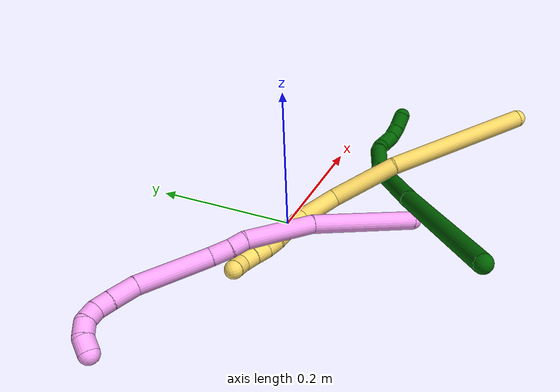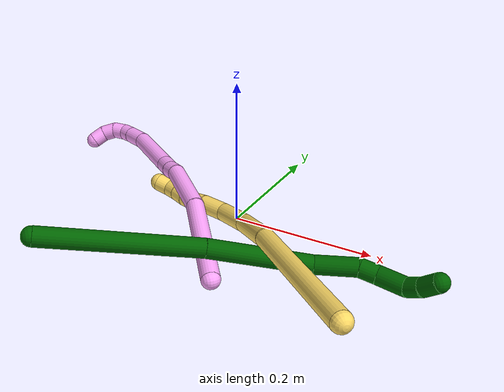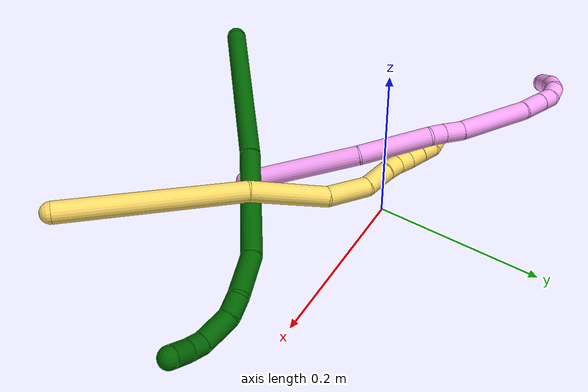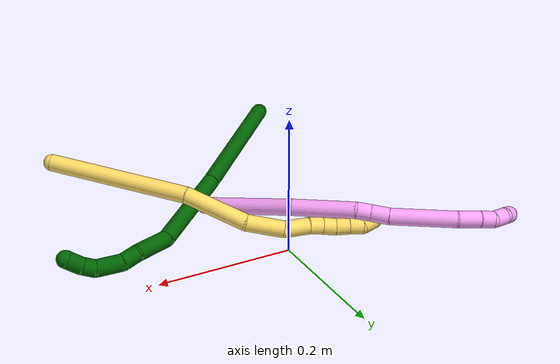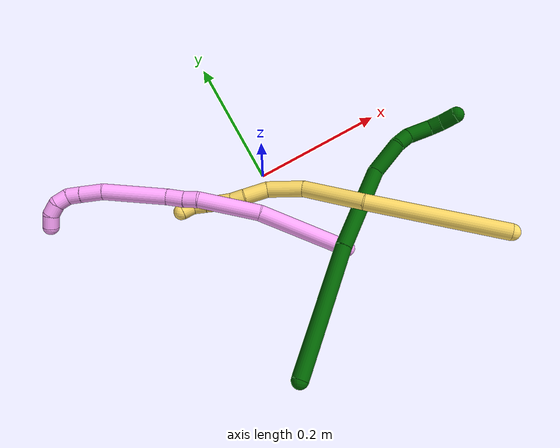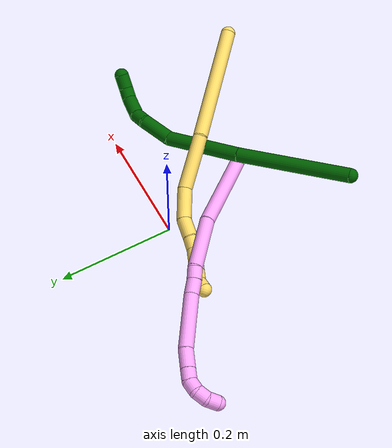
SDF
<sdf version="1.7">
 <world name="default">
  <model name="4">
   <static>0</static>
   <link name="4">
    <collision name="collision-cylinder-e_1_1_4">
     <pose>-0.043474 0.055784 -0.015827 -1.84726 -0.643337 0.830596</pose>
     <geometry><cylinder><radius>0.0125</radius><length>0.144947</length></cylinder></geometry>
     <surface>
      <friction><ode><mu>1.16</mu><mu2>1.16</mu2><slip1>0</slip1><slip2>0</slip2></ode></friction>
      <contact><ode><kp>1e+06</kp><kd>1</kd><max_vel>0</max_vel><min_depth>0.001</min_depth></ode></contact>
     </surface>
    </collision>
    <visual name="visual-cylinder-e_1_1_4">
     <pose>-0.043474 0.055784 -0.015827 -1.84726 -0.643337 0.830596</pose>
     <geometry><cylinder><radius>0.0125</radius><length>0.144947</length></cylinder></geometry>
     <material><ambient>1 0.65098 0.996078 1</ambient></material>
    </visual>
    <collision name="collision-cylinder-e_2_4_5">
     <pose>-0.119886 0.14527 -0.034392 -1.65183 -0.77228 0.830532</pose>
     <geometry><cylinder><radius>0.0125</radius><length>0.094407</length></cylinder></geometry>
     <surface>
      <friction><ode><mu>1.16</mu><mu2>1.16</mu2><slip1>0</slip1><slip2>0</slip2></ode></friction>
      <contact><ode><kp>1e+06</kp><kd>1</kd><max_vel>0</max_vel><min_depth>0.001</min_depth></ode></contact>
     </surface>
    </collision>
    <visual name="visual-cylinder-e_2_4_5">
     <pose>-0.119886 0.14527 -0.034392 -1.65183 -0.77228 0.830532</pose>
     <geometry><cylinder><radius>0.0125</radius><length>0.094407</length></cylinder></geometry>
     <material><ambient>1 0.65098 0.996078 1</ambient></material>
    </visual>
    <collision name="collision-cylinder-e_3_5_6">
     <pose>-0.161853 0.184849 -0.036068 -1.39227 -0.986487 0.844444</pose>
     <geometry><cylinder><radius>0.0125</radius><length>0.021653</length></cylinder></geometry>
     <surface>
      <friction><ode><mu>1.16</mu><mu2>1.16</mu2><slip1>0</slip1><slip2>0</slip2></ode></friction>
      <contact><ode><kp>1e+06</kp><kd>1</kd><max_vel>0</max_vel><min_depth>0.001</min_depth></ode></contact>
     </surface>
    </collision>
    <visual name="visual-cylinder-e_3_5_6">
     <pose>-0.161853 0.184849 -0.036068 -1.39227 -0.986487 0.844444</pose>
     <geometry><cylinder><radius>0.0125</radius><length>0.021653</length></cylinder></geometry>
     <material><ambient>1 0.65098 0.996078 1</ambient></material>
    </visual>
    <collision name="collision-cylinder-e_4_6_7">
     <pose>-0.181928 0.198575 -0.035266 -1.60374 -0.952697 0.979807</pose>
     <geometry><cylinder><radius>0.0125</radius><length>0.027103</length></cylinder></geometry>
     <surface>
      <friction><ode><mu>1.16</mu><mu2>1.16</mu2><slip1>0</slip1><slip2>0</slip2></ode></friction>
      <contact><ode><kp>1e+06</kp><kd>1</kd><max_vel>0</max_vel><min_depth>0.001</min_depth></ode></contact>
     </surface>
    </collision>
    <visual name="visual-cylinder-e_4_6_7">
     <pose>-0.181928 0.198575 -0.035266 -1.60374 -0.952697 0.979807</pose>
     <geometry><cylinder><radius>0.0125</radius><length>0.027103</length></cylinder></geometry>
     <material><ambient>1 0.65098 0.996078 1</ambient></material>
    </visual>
    <collision name="collision-cylinder-e_5_7_8">
     <pose>-0.22896 0.23917 -0.032321 -1.47326 -0.830148 0.760433</pose>
     <geometry><cylinder><radius>0.0125</radius><length>0.097526</length></cylinder></geometry>
     <surface>
      <friction><ode><mu>1.16</mu><mu2>1.16</mu2><slip1>0</slip1><slip2>0</slip2></ode></friction>
      <contact><ode><kp>1e+06</kp><kd>1</kd><max_vel>0</max_vel><min_depth>0.001</min_depth></ode></contact>
     </surface>
    </collision>
    <visual name="visual-cylinder-e_5_7_8">
     <pose>-0.22896 0.23917 -0.032321 -1.47326 -0.830148 0.760433</pose>
     <geometry><cylinder><radius>0.0125</radius><length>0.097526</length></cylinder></geometry>
     <material><ambient>1 0.65098 0.996078 1</ambient></material>
    </visual>
    <collision name="collision-cylinder-e_6_8_9">
     <pose>-0.277568 0.282285 -0.024687 -1.167 -0.84161 0.57457</pose>
     <geometry><cylinder><radius>0.0125</radius><length>0.033844</length></cylinder></geometry>
     <surface>
      <friction><ode><mu>1.16</mu><mu2>1.16</mu2><slip1>0</slip1><slip2>0</slip2></ode></friction>
      <contact><ode><kp>1e+06</kp><kd>1</kd><max_vel>0</max_vel><min_depth>0.001</min_depth></ode></contact>
     </surface>
    </collision>
    <visual name="visual-cylinder-e_6_8_9">
     <pose>-0.277568 0.282285 -0.024687 -1.167 -0.84161 0.57457</pose>
     <geometry><cylinder><radius>0.0125</radius><length>0.033844</length></cylinder></geometry>
     <material><ambient>1 0.65098 0.996078 1</ambient></material>
    </visual>
    <collision name="collision-cylinder-e_7_9_10">
     <pose>-0.297928 0.298648 -0.017486 -1.13787 -0.864425 0.573702</pose>
     <geometry><cylinder><radius>0.0125</radius><length>0.020352</length></cylinder></geometry>
     <surface>
      <friction><ode><mu>1.16</mu><mu2>1.16</mu2><slip1>0</slip1><slip2>0</slip2></ode></friction>
      <contact><ode><kp>1e+06</kp><kd>1</kd><max_vel>0</max_vel><min_depth>0.001</min_depth></ode></contact>
     </surface>
    </collision>
    <visual name="visual-cylinder-e_7_9_10">
     <pose>-0.297928 0.298648 -0.017486 -1.13787 -0.864425 0.573702</pose>
     <geometry><cylinder><radius>0.0125</radius><length>0.020352</length></cylinder></geometry>
     <material><ambient>1 0.65098 0.996078 1</ambient></material>
    </visual>
    <collision name="collision-cylinder-e_8_10_11">
     <pose>-0.31118 0.309744 -0.008024 -0.651213 -0.579948 0.200806</pose>
     <geometry><cylinder><radius>0.0125</radius><length>0.020115</length></cylinder></geometry>
     <surface>
      <friction><ode><mu>1.16</mu><mu2>1.16</mu2><slip1>0</slip1><slip2>0</slip2></ode></friction>
      <contact><ode><kp>1e+06</kp><kd>1</kd><max_vel>0</max_vel><min_depth>0.001</min_depth></ode></contact>
     </surface>
    </collision>
    <visual name="visual-cylinder-e_8_10_11">
     <pose>-0.31118 0.309744 -0.008024 -0.651213 -0.579948 0.200806</pose>
     <geometry><cylinder><radius>0.0125</radius><length>0.020115</length></cylinder></geometry>
     <material><ambient>1 0.65098 0.996078 1</ambient></material>
    </visual>
    <collision name="collision-cylinder-e_9_11_12">
     <pose>-0.32155 0.315364 0.007421 -0.059402 -0.505959 0.015361</pose>
     <geometry><cylinder><radius>0.0125</radius><length>0.020049</length></cylinder></geometry>
     <surface>
      <friction><ode><mu>1.16</mu><mu2>1.16</mu2><slip1>0</slip1><slip2>0</slip2></ode></friction>
      <contact><ode><kp>1e+06</kp><kd>1</kd><max_vel>0</max_vel><min_depth>0.001</min_depth></ode></contact>
     </surface>
    </collision>
    <visual name="visual-cylinder-e_9_11_12">
     <pose>-0.32155 0.315364 0.007421 -0.059402 -0.505959 0.015361</pose>
     <geometry><cylinder><radius>0.0125</radius><length>0.020049</length></cylinder></geometry>
     <material><ambient>1 0.65098 0.996078 1</ambient></material>
    </visual>
    <collision name="collision-cylinder-e_10_12_2">
     <pose>-0.329497 0.312341 0.025003 0.381588 -0.313934 -0.061118</pose>
     <geometry><cylinder><radius>0.0125</radius><length>0.020006</length></cylinder></geometry>
     <surface>
      <friction><ode><mu>1.16</mu><mu2>1.16</mu2><slip1>0</slip1><slip2>0</slip2></ode></friction>
      <contact><ode><kp>1e+06</kp><kd>1</kd><max_vel>0</max_vel><min_depth>0.001</min_depth></ode></contact>
     </surface>
    </collision>
    <visual name="visual-cylinder-e_10_12_2">
     <pose>-0.329497 0.312341 0.025003 0.381588 -0.313934 -0.061118</pose>
     <geometry><cylinder><radius>0.0125</radius><length>0.020006</length></cylinder></geometry>
     <material><ambient>1 0.65098 0.996078 1</ambient></material>
    </visual>
    <collision name="collision-sphere-2">
     <pose>-0.332586 0.308799 0.033833 0 -0 0</pose>
     <geometry><sphere><radius>0.0125</radius></sphere></geometry>
     <surface>
      <friction><ode><mu>1.16</mu><mu2>1.16</mu2><slip1>0</slip1><slip2>0</slip2></ode></friction>
      <contact><ode><kp>1e+06</kp><kd>1</kd><max_vel>0</max_vel><min_depth>0.001</min_depth></ode></contact>
     </surface>
    </collision>
    <visual name="visual-sphere-2">
     <pose>-0.332586 0.308799 0.033833 0 -0 0</pose>
     <geometry><sphere><radius>0.0125</radius></sphere></geometry>
     <material><ambient>1 0.65098 0.996078 1</ambient></material>
    </visual>
    <collision name="collision-sphere-12">
     <pose>-0.326408 0.315884 0.016174 0 -0 0</pose>
     <geometry><sphere><radius>0.0125</radius></sphere></geometry>
     <surface>
      <friction><ode><mu>1.16</mu><mu2>1.16</mu2><slip1>0</slip1><slip2>0</slip2></ode></friction>
      <contact><ode><kp>1e+06</kp><kd>1</kd><max_vel>0</max_vel><min_depth>0.001</min_depth></ode></contact>
     </surface>
    </collision>
    <visual name="visual-sphere-12">
     <pose>-0.326408 0.315884 0.016174 0 -0 0</pose>
     <geometry><sphere><radius>0.0125</radius></sphere></geometry>
     <material><ambient>1 0.65098 0.996078 1</ambient></material>
    </visual>
    <collision name="collision-sphere-11">
     <pose>-0.316692 0.314843 -0.001332 0 -0 0</pose>
     <geometry><sphere><radius>0.0125</radius></sphere></geometry>
     <surface>
      <friction><ode><mu>1.16</mu><mu2>1.16</mu2><slip1>0</slip1><slip2>0</slip2></ode></friction>
      <contact><ode><kp>1e+06</kp><kd>1</kd><max_vel>0</max_vel><min_depth>0.001</min_depth></ode></contact>
     </surface>
    </collision>
    <visual name="visual-sphere-11">
     <pose>-0.316692 0.314843 -0.001332 0 -0 0</pose>
     <geometry><sphere><radius>0.0125</radius></sphere></geometry>
     <material><ambient>1 0.65098 0.996078 1</ambient></material>
    </visual>
    <collision name="collision-sphere-10">
     <pose>-0.305669 0.304644 -0.014715 0 -0 0</pose>
     <geometry><sphere><radius>0.0125</radius></sphere></geometry>
     <surface>
      <friction><ode><mu>1.16</mu><mu2>1.16</mu2><slip1>0</slip1><slip2>0</slip2></ode></friction>
      <contact><ode><kp>1e+06</kp><kd>1</kd><max_vel>0</max_vel><min_depth>0.001</min_depth></ode></contact>
     </surface>
    </collision>
    <visual name="visual-sphere-10">
     <pose>-0.305669 0.304644 -0.014715 0 -0 0</pose>
     <geometry><sphere><radius>0.0125</radius></sphere></geometry>
     <material><ambient>1 0.65098 0.996078 1</ambient></material>
    </visual>
    <collision name="collision-sphere-9">
     <pose>-0.290187 0.292653 -0.020257 0 -0 0</pose>
     <geometry><sphere><radius>0.0125</radius></sphere></geometry>
     <surface>
      <friction><ode><mu>1.16</mu><mu2>1.16</mu2><slip1>0</slip1><slip2>0</slip2></ode></friction>
      <contact><ode><kp>1e+06</kp><kd>1</kd><max_vel>0</max_vel><min_depth>0.001</min_depth></ode></contact>
     </surface>
    </collision>
    <visual name="visual-sphere-9">
     <pose>-0.290187 0.292653 -0.020257 0 -0 0</pose>
     <geometry><sphere><radius>0.0125</radius></sphere></geometry>
     <material><ambient>1 0.65098 0.996078 1</ambient></material>
    </visual>
    <collision name="collision-sphere-4">
     <pose>-0.086949 0.111568 -0.031655 0 -0 0</pose>
     <geometry><sphere><radius>0.0125</radius></sphere></geometry>
     <surface>
      <friction><ode><mu>1.16</mu><mu2>1.16</mu2><slip1>0</slip1><slip2>0</slip2></ode></friction>
      <contact><ode><kp>1e+06</kp><kd>1</kd><max_vel>0</max_vel><min_depth>0.001</min_depth></ode></contact>
     </surface>
    </collision>
    <visual name="visual-sphere-4">
     <pose>-0.086949 0.111568 -0.031655 0 -0 0</pose>
     <geometry><sphere><radius>0.0125</radius></sphere></geometry>
     <material><ambient>1 0.65098 0.996078 1</ambient></material>
    </visual>
    <collision name="collision-sphere-1">
     <geometry><sphere><radius>0.0125</radius></sphere></geometry>
     <surface>
      <friction><ode><mu>1.16</mu><mu2>1.16</mu2><slip1>0</slip1><slip2>0</slip2></ode></friction>
      <contact><ode><kp>1e+06</kp><kd>1</kd><max_vel>0</max_vel><min_depth>0.001</min_depth></ode></contact>
     </surface>
    </collision>
    <visual name="visual-sphere-1">
     <geometry><sphere><radius>0.0125</radius></sphere></geometry>
     <material><ambient>1 0.65098 0.996078 1</ambient></material>
    </visual>
    <collision name="collision-sphere-8">
     <pose>-0.264949 0.271917 -0.029117 0 -0 0</pose>
     <geometry><sphere><radius>0.0125</radius></sphere></geometry>
     <surface>
      <friction><ode><mu>1.16</mu><mu2>1.16</mu2><slip1>0</slip1><slip2>0</slip2></ode></friction>
      <contact><ode><kp>1e+06</kp><kd>1</kd><max_vel>0</max_vel><min_depth>0.001</min_depth></ode></contact>
     </surface>
    </collision>
    <visual name="visual-sphere-8">
     <pose>-0.264949 0.271917 -0.029117 0 -0 0</pose>
     <geometry><sphere><radius>0.0125</radius></sphere></geometry>
     <material><ambient>1 0.65098 0.996078 1</ambient></material>
    </visual>
    <collision name="collision-sphere-5">
     <pose>-0.152823 0.178972 -0.037129 0 -0 0</pose>
     <geometry><sphere><radius>0.0125</radius></sphere></geometry>
     <surface>
      <friction><ode><mu>1.16</mu><mu2>1.16</mu2><slip1>0</slip1><slip2>0</slip2></ode></friction>
      <contact><ode><kp>1e+06</kp><kd>1</kd><max_vel>0</max_vel><min_depth>0.001</min_depth></ode></contact>
     </surface>
    </collision>
    <visual name="visual-sphere-5">
     <pose>-0.152823 0.178972 -0.037129 0 -0 0</pose>
     <geometry><sphere><radius>0.0125</radius></sphere></geometry>
     <material><ambient>1 0.65098 0.996078 1</ambient></material>
    </visual>
    <collision name="collision-sphere-6">
     <pose>-0.170884 0.190726 -0.035008 0 -0 0</pose>
     <geometry><sphere><radius>0.0125</radius></sphere></geometry>
     <surface>
      <friction><ode><mu>1.16</mu><mu2>1.16</mu2><slip1>0</slip1><slip2>0</slip2></ode></friction>
      <contact><ode><kp>1e+06</kp><kd>1</kd><max_vel>0</max_vel><min_depth>0.001</min_depth></ode></contact>
     </surface>
    </collision>
    <visual name="visual-sphere-6">
     <pose>-0.170884 0.190726 -0.035008 0 -0 0</pose>
     <geometry><sphere><radius>0.0125</radius></sphere></geometry>
     <material><ambient>1 0.65098 0.996078 1</ambient></material>
    </visual>
    <collision name="collision-sphere-7">
     <pose>-0.192972 0.206423 -0.035525 0 -0 0</pose>
     <geometry><sphere><radius>0.0125</radius></sphere></geometry>
     <surface>
      <friction><ode><mu>1.16</mu><mu2>1.16</mu2><slip1>0</slip1><slip2>0</slip2></ode></friction>
      <contact><ode><kp>1e+06</kp><kd>1</kd><max_vel>0</max_vel><min_depth>0.001</min_depth></ode></contact>
     </surface>
    </collision>
    <visual name="visual-sphere-7">
     <pose>-0.192972 0.206423 -0.035525 0 -0 0</pose>
     <geometry><sphere><radius>0.0125</radius></sphere></geometry>
     <material><ambient>1 0.65098 0.996078 1</ambient></material>
    </visual>
    <inertial>
     <pose>-0.166279 0.177887 -0.022267 0 -0 0</pose>
     <mass>0.5</mass>
     <inertia>
      <ixx>0.000432</ixx>
      <ixy>0</ixy>
      <ixz>0</ixz>
      <iyy>0.000413</iyy>
      <iyz>0</iyz>
      <izz>-3.4e-05</izz>
     </inertia>
    </inertial>
   </link>
   <pose>0.056853 -0.163211 0.01247 1.5816 -0.739604 -0.659775</pose>
  </model>
  <model name="5">
   <static>0</static>
   <link name="5">
    <collision name="collision-cylinder-e_1_1_4">
     <pose>0.005436 -0.005221 -0.104489 3.09167 0.051916 1.6099</pose>
     <geometry><cylinder><radius>0.0125</radius><length>0.209522</length></cylinder></geometry>
     <surface>
      <friction><ode><mu>1.16</mu><mu2>1.16</mu2><slip1>0</slip1><slip2>0</slip2></ode></friction>
      <contact><ode><kp>1e+06</kp><kd>1</kd><max_vel>0</max_vel><min_depth>0.001</min_depth></ode></contact>
     </surface>
    </collision>
    <visual name="visual-cylinder-e_1_1_4">
     <pose>0.005436 -0.005221 -0.104489 3.09167 0.051916 1.6099</pose>
     <geometry><cylinder><radius>0.0125</radius><length>0.209522</length></cylinder></geometry>
     <material><ambient>1 0.858824 0.4 1</ambient></material>
    </visual>
    <collision name="collision-cylinder-e_2_4_5">
     <pose>0.020184 -0.019241 -0.255222 2.95356 0.195295 1.60889</pose>
     <geometry><cylinder><radius>0.0125</radius><length>0.095971</length></cylinder></geometry>
     <surface>
      <friction><ode><mu>1.16</mu><mu2>1.16</mu2><slip1>0</slip1><slip2>0</slip2></ode></friction>
      <contact><ode><kp>1e+06</kp><kd>1</kd><max_vel>0</max_vel><min_depth>0.001</min_depth></ode></contact>
     </surface>
    </collision>
    <visual name="visual-cylinder-e_2_4_5">
     <pose>0.020184 -0.019241 -0.255222 2.95356 0.195295 1.60889</pose>
     <geometry><cylinder><radius>0.0125</radius><length>0.095971</length></cylinder></geometry>
     <material><ambient>1 0.858824 0.4 1</ambient></material>
    </visual>
    <collision name="collision-cylinder-e_3_5_6">
     <pose>0.026572 -0.033655 -0.328645 2.93791 -0.104964 -0.949583</pose>
     <geometry><cylinder><radius>0.0125</radius><length>0.055813</length></cylinder></geometry>
     <surface>
      <friction><ode><mu>1.16</mu><mu2>1.16</mu2><slip1>0</slip1><slip2>0</slip2></ode></friction>
      <contact><ode><kp>1e+06</kp><kd>1</kd><max_vel>0</max_vel><min_depth>0.001</min_depth></ode></contact>
     </surface>
    </collision>
    <visual name="visual-cylinder-e_3_5_6">
     <pose>0.026572 -0.033655 -0.328645 2.93791 -0.104964 -0.949583</pose>
     <geometry><cylinder><radius>0.0125</radius><length>0.055813</length></cylinder></geometry>
     <material><ambient>1 0.858824 0.4 1</ambient></material>
    </visual>
    <collision name="collision-cylinder-e_4_6_7">
     <pose>0.015272 -0.043309 -0.371732 2.89287 -0.471918 -2.18268</pose>
     <geometry><cylinder><radius>0.0125</radius><length>0.036855</length></cylinder></geometry>
     <surface>
      <friction><ode><mu>1.16</mu><mu2>1.16</mu2><slip1>0</slip1><slip2>0</slip2></ode></friction>
      <contact><ode><kp>1e+06</kp><kd>1</kd><max_vel>0</max_vel><min_depth>0.001</min_depth></ode></contact>
     </surface>
    </collision>
    <visual name="visual-cylinder-e_4_6_7">
     <pose>0.015272 -0.043309 -0.371732 2.89287 -0.471918 -2.18268</pose>
     <geometry><cylinder><radius>0.0125</radius><length>0.036855</length></cylinder></geometry>
     <material><ambient>1 0.858824 0.4 1</ambient></material>
    </visual>
    <collision name="collision-cylinder-e_5_7_8">
     <pose>0.003066 -0.050927 -0.396866 2.77168 -0.369186 -1.5688</pose>
     <geometry><cylinder><radius>0.0125</radius><length>0.02122</length></cylinder></geometry>
     <surface>
      <friction><ode><mu>1.16</mu><mu2>1.16</mu2><slip1>0</slip1><slip2>0</slip2></ode></friction>
      <contact><ode><kp>1e+06</kp><kd>1</kd><max_vel>0</max_vel><min_depth>0.001</min_depth></ode></contact>
     </surface>
    </collision>
    <visual name="visual-cylinder-e_5_7_8">
     <pose>0.003066 -0.050927 -0.396866 2.77168 -0.369186 -1.5688</pose>
     <geometry><cylinder><radius>0.0125</radius><length>0.02122</length></cylinder></geometry>
     <material><ambient>1 0.858824 0.4 1</ambient></material>
    </visual>
    <collision name="collision-cylinder-e_6_8_9">
     <pose>-0.003206 -0.057016 -0.415465 2.87977 -0.246662 -1.51056</pose>
     <geometry><cylinder><radius>0.0125</radius><length>0.020012</length></cylinder></geometry>
     <surface>
      <friction><ode><mu>1.16</mu><mu2>1.16</mu2><slip1>0</slip1><slip2>0</slip2></ode></friction>
      <contact><ode><kp>1e+06</kp><kd>1</kd><max_vel>0</max_vel><min_depth>0.001</min_depth></ode></contact>
     </surface>
    </collision>
    <visual name="visual-cylinder-e_6_8_9">
     <pose>-0.003206 -0.057016 -0.415465 2.87977 -0.246662 -1.51056</pose>
     <geometry><cylinder><radius>0.0125</radius><length>0.020012</length></cylinder></geometry>
     <material><ambient>1 0.858824 0.4 1</ambient></material>
    </visual>
    <collision name="collision-cylinder-e_7_9_10">
     <pose>-0.008954 -0.060522 -0.434458 3.03858 -0.32928 -2.53987</pose>
     <geometry><cylinder><radius>0.0125</radius><length>0.020441</length></cylinder></geometry>
     <surface>
      <friction><ode><mu>1.16</mu><mu2>1.16</mu2><slip1>0</slip1><slip2>0</slip2></ode></friction>
      <contact><ode><kp>1e+06</kp><kd>1</kd><max_vel>0</max_vel><min_depth>0.001</min_depth></ode></contact>
     </surface>
    </collision>
    <visual name="visual-cylinder-e_7_9_10">
     <pose>-0.008954 -0.060522 -0.434458 3.03858 -0.32928 -2.53987</pose>
     <geometry><cylinder><radius>0.0125</radius><length>0.020441</length></cylinder></geometry>
     <material><ambient>1 0.858824 0.4 1</ambient></material>
    </visual>
    <collision name="collision-cylinder-e_8_10_11">
     <pose>-0.015192 -0.063089 -0.453596 2.97787 -0.295145 -2.13294</pose>
     <geometry><cylinder><radius>0.0125</radius><length>0.020165</length></cylinder></geometry>
     <surface>
      <friction><ode><mu>1.16</mu><mu2>1.16</mu2><slip1>0</slip1><slip2>0</slip2></ode></friction>
      <contact><ode><kp>1e+06</kp><kd>1</kd><max_vel>0</max_vel><min_depth>0.001</min_depth></ode></contact>
     </surface>
    </collision>
    <visual name="visual-cylinder-e_8_10_11">
     <pose>-0.015192 -0.063089 -0.453596 2.97787 -0.295145 -2.13294</pose>
     <geometry><cylinder><radius>0.0125</radius><length>0.020165</length></cylinder></geometry>
     <material><ambient>1 0.858824 0.4 1</ambient></material>
    </visual>
    <collision name="collision-cylinder-e_9_11_2">
     <pose>-0.025153 -0.065701 -0.470151 2.9949 -0.779371 -2.78751</pose>
     <geometry><cylinder><radius>0.0125</radius><length>0.02</length></cylinder></geometry>
     <surface>
      <friction><ode><mu>1.16</mu><mu2>1.16</mu2><slip1>0</slip1><slip2>0</slip2></ode></friction>
      <contact><ode><kp>1e+06</kp><kd>1</kd><max_vel>0</max_vel><min_depth>0.001</min_depth></ode></contact>
     </surface>
    </collision>
    <visual name="visual-cylinder-e_9_11_2">
     <pose>-0.025153 -0.065701 -0.470151 2.9949 -0.779371 -2.78751</pose>
     <geometry><cylinder><radius>0.0125</radius><length>0.02</length></cylinder></geometry>
     <material><ambient>1 0.858824 0.4 1</ambient></material>
    </visual>
    <collision name="collision-sphere-2">
     <pose>-0.032182 -0.066741 -0.477188 0 -0 0</pose>
     <geometry><sphere><radius>0.0125</radius></sphere></geometry>
     <surface>
      <friction><ode><mu>1.16</mu><mu2>1.16</mu2><slip1>0</slip1><slip2>0</slip2></ode></friction>
      <contact><ode><kp>1e+06</kp><kd>1</kd><max_vel>0</max_vel><min_depth>0.001</min_depth></ode></contact>
     </surface>
    </collision>
    <visual name="visual-sphere-2">
     <pose>-0.032182 -0.066741 -0.477188 0 -0 0</pose>
     <geometry><sphere><radius>0.0125</radius></sphere></geometry>
     <material><ambient>1 0.858824 0.4 1</ambient></material>
    </visual>
    <collision name="collision-sphere-11">
     <pose>-0.018125 -0.064661 -0.463113 0 -0 0</pose>
     <geometry><sphere><radius>0.0125</radius></sphere></geometry>
     <surface>
      <friction><ode><mu>1.16</mu><mu2>1.16</mu2><slip1>0</slip1><slip2>0</slip2></ode></friction>
      <contact><ode><kp>1e+06</kp><kd>1</kd><max_vel>0</max_vel><min_depth>0.001</min_depth></ode></contact>
     </surface>
    </collision>
    <visual name="visual-sphere-11">
     <pose>-0.018125 -0.064661 -0.463113 0 -0 0</pose>
     <geometry><sphere><radius>0.0125</radius></sphere></geometry>
     <material><ambient>1 0.858824 0.4 1</ambient></material>
    </visual>
    <collision name="collision-sphere-10">
     <pose>-0.012259 -0.061517 -0.444078 0 -0 0</pose>
     <geometry><sphere><radius>0.0125</radius></sphere></geometry>
     <surface>
      <friction><ode><mu>1.16</mu><mu2>1.16</mu2><slip1>0</slip1><slip2>0</slip2></ode></friction>
      <contact><ode><kp>1e+06</kp><kd>1</kd><max_vel>0</max_vel><min_depth>0.001</min_depth></ode></contact>
     </surface>
    </collision>
    <visual name="visual-sphere-10">
     <pose>-0.012259 -0.061517 -0.444078 0 -0 0</pose>
     <geometry><sphere><radius>0.0125</radius></sphere></geometry>
     <material><ambient>1 0.858824 0.4 1</ambient></material>
    </visual>
    <collision name="collision-sphere-9">
     <pose>-0.005649 -0.059528 -0.424838 0 -0 0</pose>
     <geometry><sphere><radius>0.0125</radius></sphere></geometry>
     <surface>
      <friction><ode><mu>1.16</mu><mu2>1.16</mu2><slip1>0</slip1><slip2>0</slip2></ode></friction>
      <contact><ode><kp>1e+06</kp><kd>1</kd><max_vel>0</max_vel><min_depth>0.001</min_depth></ode></contact>
     </surface>
    </collision>
    <visual name="visual-sphere-9">
     <pose>-0.005649 -0.059528 -0.424838 0 -0 0</pose>
     <geometry><sphere><radius>0.0125</radius></sphere></geometry>
     <material><ambient>1 0.858824 0.4 1</ambient></material>
    </visual>
    <collision name="collision-sphere-4">
     <pose>0.010873 -0.010442 -0.208979 0 -0 0</pose>
     <geometry><sphere><radius>0.0125</radius></sphere></geometry>
     <surface>
      <friction><ode><mu>1.16</mu><mu2>1.16</mu2><slip1>0</slip1><slip2>0</slip2></ode></friction>
      <contact><ode><kp>1e+06</kp><kd>1</kd><max_vel>0</max_vel><min_depth>0.001</min_depth></ode></contact>
     </surface>
    </collision>
    <visual name="visual-sphere-4">
     <pose>0.010873 -0.010442 -0.208979 0 -0 0</pose>
     <geometry><sphere><radius>0.0125</radius></sphere></geometry>
     <material><ambient>1 0.858824 0.4 1</ambient></material>
    </visual>
    <collision name="collision-sphere-1">
     <geometry><sphere><radius>0.0125</radius></sphere></geometry>
     <surface>
      <friction><ode><mu>1.16</mu><mu2>1.16</mu2><slip1>0</slip1><slip2>0</slip2></ode></friction>
      <contact><ode><kp>1e+06</kp><kd>1</kd><max_vel>0</max_vel><min_depth>0.001</min_depth></ode></contact>
     </surface>
    </collision>
    <visual name="visual-sphere-1">
     <geometry><sphere><radius>0.0125</radius></sphere></geometry>
     <material><ambient>1 0.858824 0.4 1</ambient></material>
    </visual>
    <collision name="collision-sphere-8">
     <pose>-0.000763 -0.054505 -0.406092 0 -0 0</pose>
     <geometry><sphere><radius>0.0125</radius></sphere></geometry>
     <surface>
      <friction><ode><mu>1.16</mu><mu2>1.16</mu2><slip1>0</slip1><slip2>0</slip2></ode></friction>
      <contact><ode><kp>1e+06</kp><kd>1</kd><max_vel>0</max_vel><min_depth>0.001</min_depth></ode></contact>
     </surface>
    </collision>
    <visual name="visual-sphere-8">
     <pose>-0.000763 -0.054505 -0.406092 0 -0 0</pose>
     <geometry><sphere><radius>0.0125</radius></sphere></geometry>
     <material><ambient>1 0.858824 0.4 1</ambient></material>
    </visual>
    <collision name="collision-sphere-5">
     <pose>0.029496 -0.028041 -0.301465 0 -0 0</pose>
     <geometry><sphere><radius>0.0125</radius></sphere></geometry>
     <surface>
      <friction><ode><mu>1.16</mu><mu2>1.16</mu2><slip1>0</slip1><slip2>0</slip2></ode></friction>
      <contact><ode><kp>1e+06</kp><kd>1</kd><max_vel>0</max_vel><min_depth>0.001</min_depth></ode></contact>
     </surface>
    </collision>
    <visual name="visual-sphere-5">
     <pose>0.029496 -0.028041 -0.301465 0 -0 0</pose>
     <geometry><sphere><radius>0.0125</radius></sphere></geometry>
     <material><ambient>1 0.858824 0.4 1</ambient></material>
    </visual>
    <collision name="collision-sphere-6">
     <pose>0.023649 -0.039269 -0.355824 0 -0 0</pose>
     <geometry><sphere><radius>0.0125</radius></sphere></geometry>
     <surface>
      <friction><ode><mu>1.16</mu><mu2>1.16</mu2><slip1>0</slip1><slip2>0</slip2></ode></friction>
      <contact><ode><kp>1e+06</kp><kd>1</kd><max_vel>0</max_vel><min_depth>0.001</min_depth></ode></contact>
     </surface>
    </collision>
    <visual name="visual-sphere-6">
     <pose>0.023649 -0.039269 -0.355824 0 -0 0</pose>
     <geometry><sphere><radius>0.0125</radius></sphere></geometry>
     <material><ambient>1 0.858824 0.4 1</ambient></material>
    </visual>
    <collision name="collision-sphere-7">
     <pose>0.006895 -0.04735 -0.387641 0 -0 0</pose>
     <geometry><sphere><radius>0.0125</radius></sphere></geometry>
     <surface>
      <friction><ode><mu>1.16</mu><mu2>1.16</mu2><slip1>0</slip1><slip2>0</slip2></ode></friction>
      <contact><ode><kp>1e+06</kp><kd>1</kd><max_vel>0</max_vel><min_depth>0.001</min_depth></ode></contact>
     </surface>
    </collision>
    <visual name="visual-sphere-7">
     <pose>0.006895 -0.04735 -0.387641 0 -0 0</pose>
     <geometry><sphere><radius>0.0125</radius></sphere></geometry>
     <material><ambient>1 0.858824 0.4 1</ambient></material>
    </visual>
    <inertial>
     <pose>0.008261 -0.02492 -0.245193 0 -0 0</pose>
     <mass>0.5</mass>
     <inertia>
      <ixx>0.000794</ixx>
      <ixy>0</ixy>
      <ixz>0</ixz>
      <iyy>0.000857</iyy>
      <iyz>0</iyz>
      <izz>-2.7e-05</izz>
     </inertia>
    </inertial>
   </link>
   <pose>0.259403 -0.256682 0.090506 1.49086 0.556336 0.809192</pose>
  </model>
  <model name="6">
   <static>0</static>
   <link name="6">
    <collision name="collision-cylinder-e_1_1_4">
     <pose>0.024479 0.009254 -0.096717 -3.04621 0.246813 -2.40691</pose>
     <geometry><cylinder><radius>0.0125</radius><length>0.20039</length></cylinder></geometry>
     <surface>
      <friction><ode><mu>1.16</mu><mu2>1.16</mu2><slip1>0</slip1><slip2>0</slip2></ode></friction>
      <contact><ode><kp>1e+06</kp><kd>1</kd><max_vel>0</max_vel><min_depth>0.001</min_depth></ode></contact>
     </surface>
    </collision>
    <visual name="visual-cylinder-e_1_1_4">
     <pose>0.024479 0.009254 -0.096717 -3.04621 0.246813 -2.40691</pose>
     <geometry><cylinder><radius>0.0125</radius><length>0.20039</length></cylinder></geometry>
     <material><ambient>0 0.392157 0.003922 1</ambient></material>
    </visual>
    <collision name="collision-cylinder-e_2_4_5">
     <pose>0.071256 0.027078 -0.257003 -3.00758 0.33455 -2.38501</pose>
     <geometry><cylinder><radius>0.0125</radius><length>0.135818</length></cylinder></geometry>
     <surface>
      <friction><ode><mu>1.16</mu><mu2>1.16</mu2><slip1>0</slip1><slip2>0</slip2></ode></friction>
      <contact><ode><kp>1e+06</kp><kd>1</kd><max_vel>0</max_vel><min_depth>0.001</min_depth></ode></contact>
     </surface>
    </collision>
    <visual name="visual-cylinder-e_2_4_5">
     <pose>0.071256 0.027078 -0.257003 -3.00758 0.33455 -2.38501</pose>
     <geometry><cylinder><radius>0.0125</radius><length>0.135818</length></cylinder></geometry>
     <material><ambient>0 0.392157 0.003922 1</ambient></material>
    </visual>
    <collision name="collision-cylinder-e_3_5_6">
     <pose>0.101179 0.048612 -0.344178 -2.6394 0.275945 -0.992317</pose>
     <geometry><cylinder><radius>0.0125</radius><length>0.055981</length></cylinder></geometry>
     <surface>
      <friction><ode><mu>1.16</mu><mu2>1.16</mu2><slip1>0</slip1><slip2>0</slip2></ode></friction>
      <contact><ode><kp>1e+06</kp><kd>1</kd><max_vel>0</max_vel><min_depth>0.001</min_depth></ode></contact>
     </surface>
    </collision>
    <visual name="visual-cylinder-e_3_5_6">
     <pose>0.101179 0.048612 -0.344178 -2.6394 0.275945 -0.992317</pose>
     <geometry><cylinder><radius>0.0125</radius><length>0.055981</length></cylinder></geometry>
     <material><ambient>0 0.392157 0.003922 1</ambient></material>
    </visual>
    <collision name="collision-cylinder-e_4_6_7">
     <pose>0.115646 0.066342 -0.376485 -2.64044 0.603655 -1.76543</pose>
     <geometry><cylinder><radius>0.0125</radius><length>0.024103</length></cylinder></geometry>
     <surface>
      <friction><ode><mu>1.16</mu><mu2>1.16</mu2><slip1>0</slip1><slip2>0</slip2></ode></friction>
      <contact><ode><kp>1e+06</kp><kd>1</kd><max_vel>0</max_vel><min_depth>0.001</min_depth></ode></contact>
     </surface>
    </collision>
    <visual name="visual-cylinder-e_4_6_7">
     <pose>0.115646 0.066342 -0.376485 -2.64044 0.603655 -1.76543</pose>
     <geometry><cylinder><radius>0.0125</radius><length>0.024103</length></cylinder></geometry>
     <material><ambient>0 0.392157 0.003922 1</ambient></material>
    </visual>
    <collision name="collision-cylinder-e_5_7_8">
     <pose>0.133199 0.084187 -0.394402 -2.18461 0.589991 -1.05985</pose>
     <geometry><cylinder><radius>0.0125</radius><length>0.038508</length></cylinder></geometry>
     <surface>
      <friction><ode><mu>1.16</mu><mu2>1.16</mu2><slip1>0</slip1><slip2>0</slip2></ode></friction>
      <contact><ode><kp>1e+06</kp><kd>1</kd><max_vel>0</max_vel><min_depth>0.001</min_depth></ode></contact>
     </surface>
    </collision>
    <visual name="visual-cylinder-e_5_7_8">
     <pose>0.133199 0.084187 -0.394402 -2.18461 0.589991 -1.05985</pose>
     <geometry><cylinder><radius>0.0125</radius><length>0.038508</length></cylinder></geometry>
     <material><ambient>0 0.392157 0.003922 1</ambient></material>
    </visual>
    <collision name="collision-cylinder-e_6_8_9">
     <pose>0.14566 0.106477 -0.407492 -1.96901 0.173179 -0.259914</pose>
     <geometry><cylinder><radius>0.0125</radius><length>0.020289</length></cylinder></geometry>
     <surface>
      <friction><ode><mu>1.16</mu><mu2>1.16</mu2><slip1>0</slip1><slip2>0</slip2></ode></friction>
      <contact><ode><kp>1e+06</kp><kd>1</kd><max_vel>0</max_vel><min_depth>0.001</min_depth></ode></contact>
     </surface>
    </collision>
    <visual name="visual-cylinder-e_6_8_9">
     <pose>0.14566 0.106477 -0.407492 -1.96901 0.173179 -0.259914</pose>
     <geometry><cylinder><radius>0.0125</radius><length>0.020289</length></cylinder></geometry>
     <material><ambient>0 0.392157 0.003922 1</ambient></material>
    </visual>
    <collision name="collision-cylinder-e_7_9_2">
     <pose>0.146789 0.127269 -0.415908 -1.94446 -0.049691 0.072839</pose>
     <geometry><cylinder><radius>0.0125</radius><length>0.024912</length></cylinder></geometry>
     <surface>
      <friction><ode><mu>1.16</mu><mu2>1.16</mu2><slip1>0</slip1><slip2>0</slip2></ode></friction>
      <contact><ode><kp>1e+06</kp><kd>1</kd><max_vel>0</max_vel><min_depth>0.001</min_depth></ode></contact>
     </surface>
    </collision>
    <visual name="visual-cylinder-e_7_9_2">
     <pose>0.146789 0.127269 -0.415908 -1.94446 -0.049691 0.072839</pose>
     <geometry><cylinder><radius>0.0125</radius><length>0.024912</length></cylinder></geometry>
     <material><ambient>0 0.392157 0.003922 1</ambient></material>
    </visual>
    <collision name="collision-sphere-2">
     <pose>0.14617 0.138851 -0.420449 0 -0 0</pose>
     <geometry><sphere><radius>0.0125</radius></sphere></geometry>
     <surface>
      <friction><ode><mu>1.16</mu><mu2>1.16</mu2><slip1>0</slip1><slip2>0</slip2></ode></friction>
      <contact><ode><kp>1e+06</kp><kd>1</kd><max_vel>0</max_vel><min_depth>0.001</min_depth></ode></contact>
     </surface>
    </collision>
    <visual name="visual-sphere-2">
     <pose>0.14617 0.138851 -0.420449 0 -0 0</pose>
     <geometry><sphere><radius>0.0125</radius></sphere></geometry>
     <material><ambient>0 0.392157 0.003922 1</ambient></material>
    </visual>
    <collision name="collision-sphere-9">
     <pose>0.147408 0.115687 -0.411367 0 -0 0</pose>
     <geometry><sphere><radius>0.0125</radius></sphere></geometry>
     <surface>
      <friction><ode><mu>1.16</mu><mu2>1.16</mu2><slip1>0</slip1><slip2>0</slip2></ode></friction>
      <contact><ode><kp>1e+06</kp><kd>1</kd><max_vel>0</max_vel><min_depth>0.001</min_depth></ode></contact>
     </surface>
    </collision>
    <visual name="visual-sphere-9">
     <pose>0.147408 0.115687 -0.411367 0 -0 0</pose>
     <geometry><sphere><radius>0.0125</radius></sphere></geometry>
     <material><ambient>0 0.392157 0.003922 1</ambient></material>
    </visual>
    <collision name="collision-sphere-4">
     <pose>0.048958 0.018507 -0.193434 0 -0 0</pose>
     <geometry><sphere><radius>0.0125</radius></sphere></geometry>
     <surface>
      <friction><ode><mu>1.16</mu><mu2>1.16</mu2><slip1>0</slip1><slip2>0</slip2></ode></friction>
      <contact><ode><kp>1e+06</kp><kd>1</kd><max_vel>0</max_vel><min_depth>0.001</min_depth></ode></contact>
     </surface>
    </collision>
    <visual name="visual-sphere-4">
     <pose>0.048958 0.018507 -0.193434 0 -0 0</pose>
     <geometry><sphere><radius>0.0125</radius></sphere></geometry>
     <material><ambient>0 0.392157 0.003922 1</ambient></material>
    </visual>
    <collision name="collision-sphere-1">
     <geometry><sphere><radius>0.0125</radius></sphere></geometry>
     <surface>
      <friction><ode><mu>1.16</mu><mu2>1.16</mu2><slip1>0</slip1><slip2>0</slip2></ode></friction>
      <contact><ode><kp>1e+06</kp><kd>1</kd><max_vel>0</max_vel><min_depth>0.001</min_depth></ode></contact>
     </surface>
    </collision>
    <visual name="visual-sphere-1">
     <geometry><sphere><radius>0.0125</radius></sphere></geometry>
     <material><ambient>0 0.392157 0.003922 1</ambient></material>
    </visual>
    <collision name="collision-sphere-8">
     <pose>0.143912 0.097266 -0.403617 0 -0 0</pose>
     <geometry><sphere><radius>0.0125</radius></sphere></geometry>
     <surface>
      <friction><ode><mu>1.16</mu><mu2>1.16</mu2><slip1>0</slip1><slip2>0</slip2></ode></friction>
      <contact><ode><kp>1e+06</kp><kd>1</kd><max_vel>0</max_vel><min_depth>0.001</min_depth></ode></contact>
     </surface>
    </collision>
    <visual name="visual-sphere-8">
     <pose>0.143912 0.097266 -0.403617 0 -0 0</pose>
     <geometry><sphere><radius>0.0125</radius></sphere></geometry>
     <material><ambient>0 0.392157 0.003922 1</ambient></material>
    </visual>
    <collision name="collision-sphere-5">
     <pose>0.093553 0.035648 -0.320572 0 -0 0</pose>
     <geometry><sphere><radius>0.0125</radius></sphere></geometry>
     <surface>
      <friction><ode><mu>1.16</mu><mu2>1.16</mu2><slip1>0</slip1><slip2>0</slip2></ode></friction>
      <contact><ode><kp>1e+06</kp><kd>1</kd><max_vel>0</max_vel><min_depth>0.001</min_depth></ode></contact>
     </surface>
    </collision>
    <visual name="visual-sphere-5">
     <pose>0.093553 0.035648 -0.320572 0 -0 0</pose>
     <geometry><sphere><radius>0.0125</radius></sphere></geometry>
     <material><ambient>0 0.392157 0.003922 1</ambient></material>
    </visual>
    <collision name="collision-sphere-6">
     <pose>0.108805 0.061575 -0.367784 0 -0 0</pose>
     <geometry><sphere><radius>0.0125</radius></sphere></geometry>
     <surface>
      <friction><ode><mu>1.16</mu><mu2>1.16</mu2><slip1>0</slip1><slip2>0</slip2></ode></friction>
      <contact><ode><kp>1e+06</kp><kd>1</kd><max_vel>0</max_vel><min_depth>0.001</min_depth></ode></contact>
     </surface>
    </collision>
    <visual name="visual-sphere-6">
     <pose>0.108805 0.061575 -0.367784 0 -0 0</pose>
     <geometry><sphere><radius>0.0125</radius></sphere></geometry>
     <material><ambient>0 0.392157 0.003922 1</ambient></material>
    </visual>
    <collision name="collision-sphere-7">
     <pose>0.122487 0.071108 -0.385187 0 -0 0</pose>
     <geometry><sphere><radius>0.0125</radius></sphere></geometry>
     <surface>
      <friction><ode><mu>1.16</mu><mu2>1.16</mu2><slip1>0</slip1><slip2>0</slip2></ode></friction>
      <contact><ode><kp>1e+06</kp><kd>1</kd><max_vel>0</max_vel><min_depth>0.001</min_depth></ode></contact>
     </surface>
    </collision>
    <visual name="visual-sphere-7">
     <pose>0.122487 0.071108 -0.385187 0 -0 0</pose>
     <geometry><sphere><radius>0.0125</radius></sphere></geometry>
     <material><ambient>0 0.392157 0.003922 1</ambient></material>
    </visual>
    <inertial>
     <pose>0.069552 0.03685 -0.232889 0 -0 0</pose>
     <mass>0.5</mass>
     <inertia>
      <ixx>-0.001209</ixx>
      <ixy>0</ixy>
      <ixz>0</ixz>
      <iyy>7.8e-05</iyy>
      <iyz>0</iyz>
      <izz>-0.000384</izz>
     </inertia>
    </inertial>
   </link>
   <pose>-0.100684 -0.288507 0.091892 1.46515 0.901391 -0.70751</pose>
  </model>
 </world>
</sdf>
